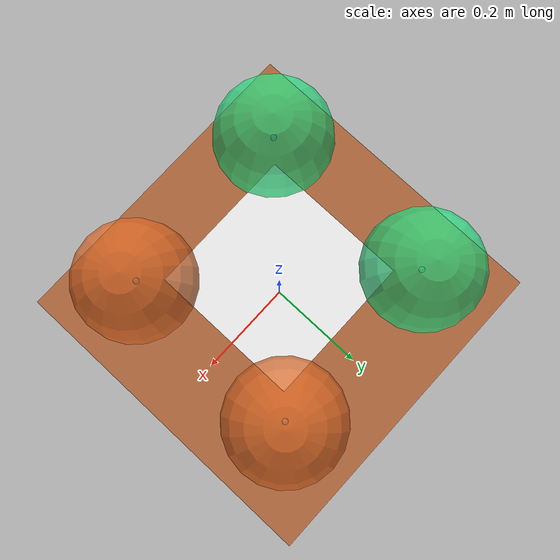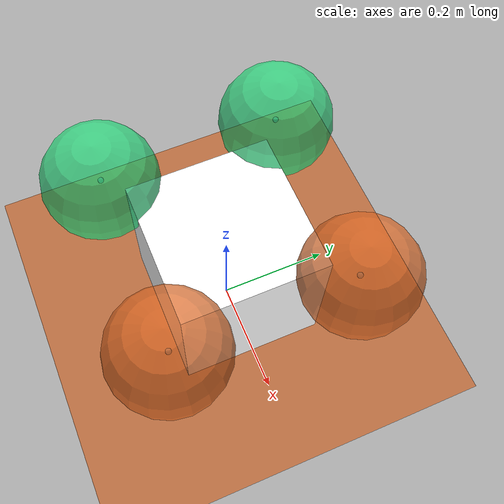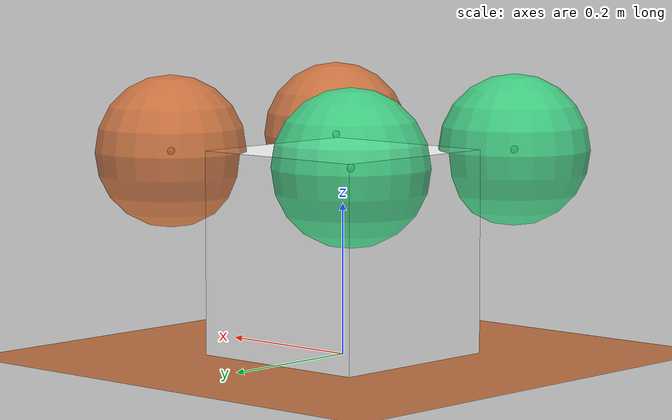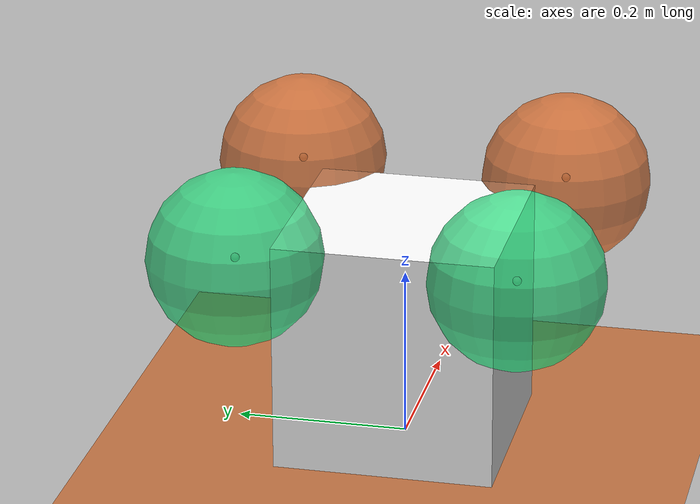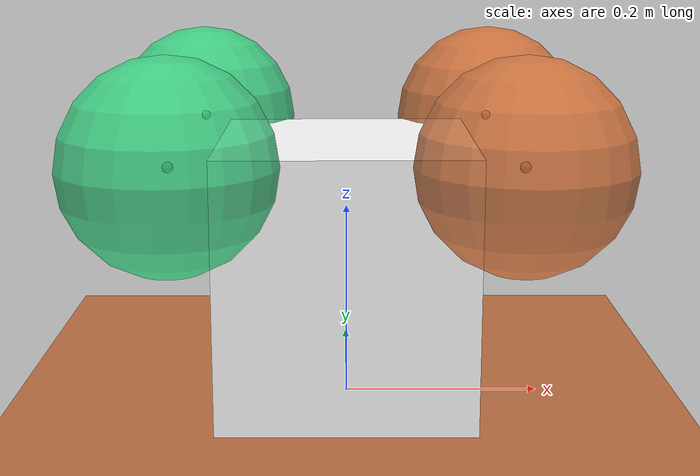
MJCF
<mujoco model="TacDrone">

    <option timestep="0.01" gravity="0 0 -9.81" integrator="RK4">
    </option>

    <statistic center="0 0 1" extent="8"/>

    <visual>
        <global azimuth="0" elevation="-20" fovy="70"/>
    </visual>

    <default>
        <geom solref="-1000 -50" solimp="0.9 0.95 0.001 0.5 2" condim="3" friction="0.5 0.005 0.0001"/>
    </default>

    <asset>
        <texture type="skybox" builtin="gradient" rgb1="0.3 0.5 0.7" rgb2="0 0 0" width="512" height="3072"/>
        <texture type="2d" name="groundplane" builtin="checker" mark="edge" rgb1="0.55 0.14 0.29" rgb2="0.92 0.73 0.22"
            markrgb="0.8 0.8 0.8" width="300" height="300"/>
        <material name="groundplane" texture="groundplane" texuniform="true" texrepeat="5 5" reflectance="0.1" rgba="1 1 1 0.6"/>
    </asset>

    <worldbody>
        <light name="spotlight" mode="targetbodycom" target="TD" pos="0 -1 2"/>
        <geom name="floor" size="5 5 0.05" pos="0 0 0" type="plane" material="groundplane" condim="3"/>
        <body name="TD" pos="0 0 0.135">
            <freejoint/>
            <camera name="track" pos="0 -2.5 -2.5" xyaxes="1 0 0 0 0.707 0.707" mode="trackcom"/>
            <site name="imu" pos="0 0 0.03"/>
            <inertial pos="0 0 0" mass="1.883" diaginertia="0.01355 0.01562 0.0267"/>
            <geom name="chassis" type="box" size=".1275 .1275 .135" rgba="40 40 40 1"/>
            <geom name="rotor1" type="sphere" size="0.1" pos=".159 -.159 .135" rgba=".90 .43 .16 .75"/>
            <geom name="rotor2" type="sphere" size="0.1" pos="-.159 .159 .135" rgba=".16 .90 .51 .75"/>
            <geom name="rotor3" type="sphere" size="0.1" pos=".159 .159 .135" rgba=".90 .43 .16 .75"/>
            <geom name="rotor4" type="sphere" size="0.1" pos="-.159 -.159 .135" rgba=".16 .90 .51 .75"/>
            <site name="thrust1" pos=".159 -.159 .135"/>
            <site name="thrust2" pos="-.159 .159 .135"/>
            <site name="thrust3" pos=".159 .159 .135"/>
            <site name="thrust4" pos="-.159 -.159 .135"/>
        </body>
    </worldbody>

    <actuator>
        <motor name="thrust1" site="thrust1" forcelimited="true" forcerange="0 10" gear="0 0 1 0 0 -.0167"/>
        <motor name="thrust2" site="thrust2" forcelimited="true" forcerange="0 10" gear="0 0 1 0 0 -.0167"/>
        <motor name="thrust3" site="thrust3" forcelimited="true" forcerange="0 10" gear="0 0 1 0 0 .0167"/>
        <motor name="thrust4" site="thrust4" forcelimited="true" forcerange="0 10" gear="0 0 1 0 0 .0167"/>
    </actuator>

    <sensor>
        <gyro name="body_gyro" site="imu"/>
        <accelerometer name="body_accel" site="imu"/>
        <framequat name="body_quat" objtype="site" objname="imu"/>
    </sensor>

</mujoco>
